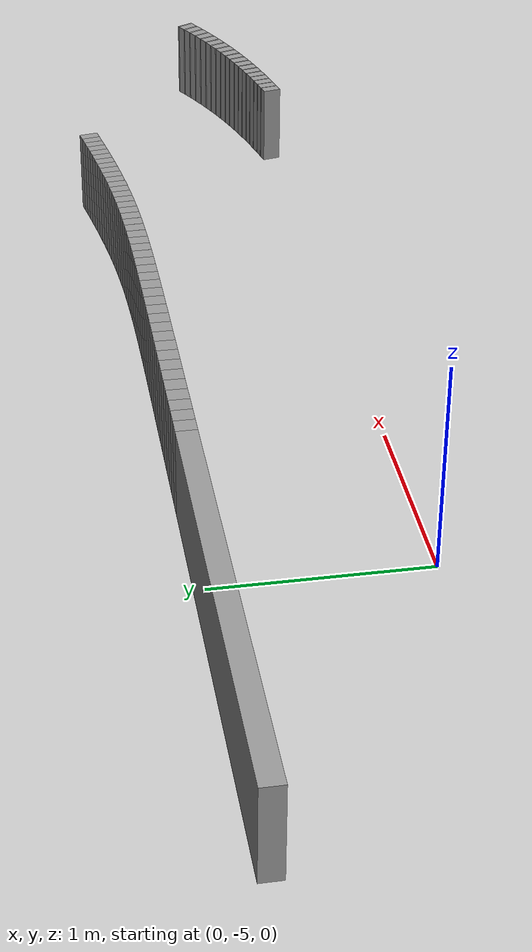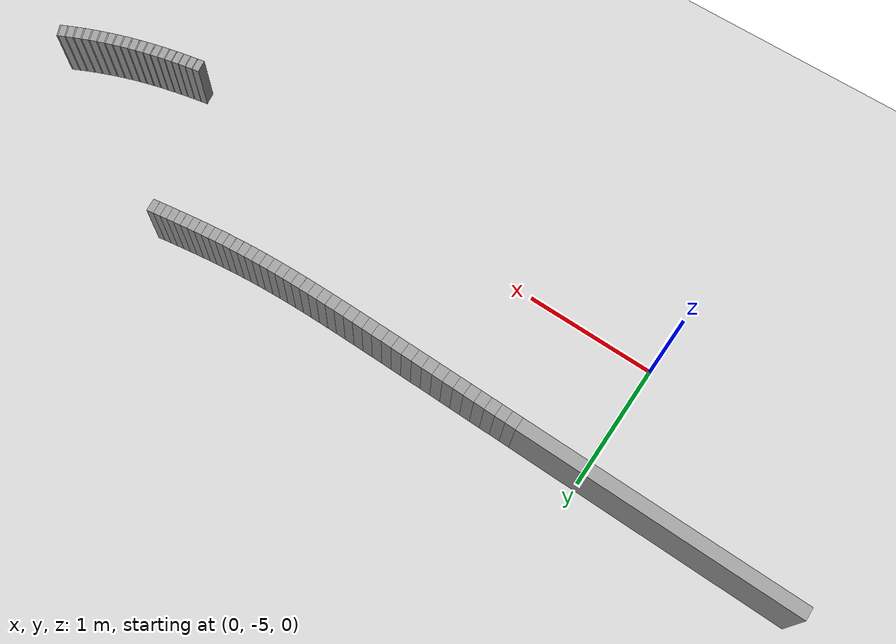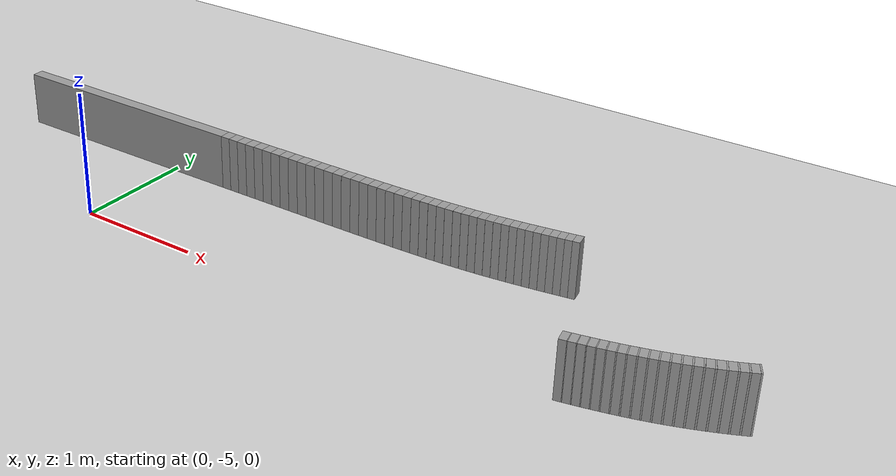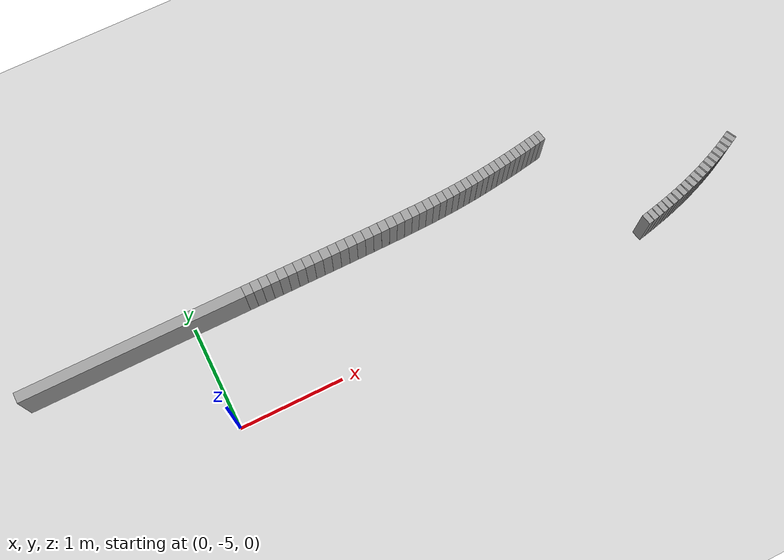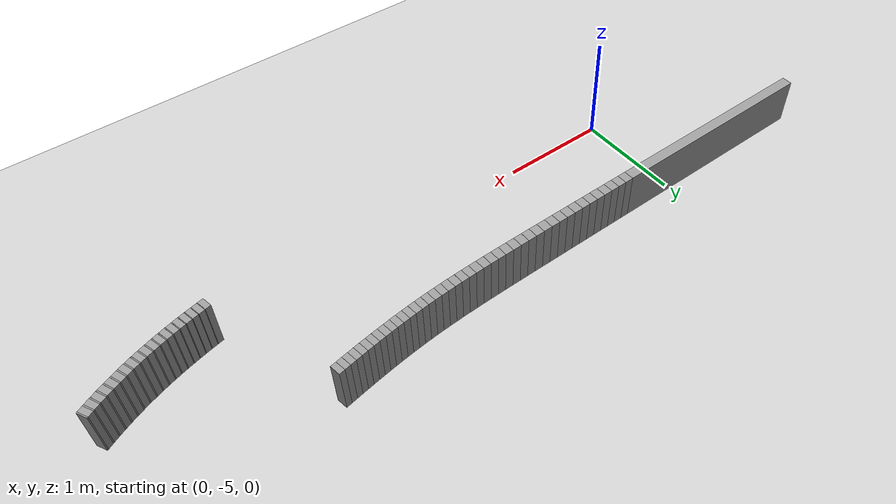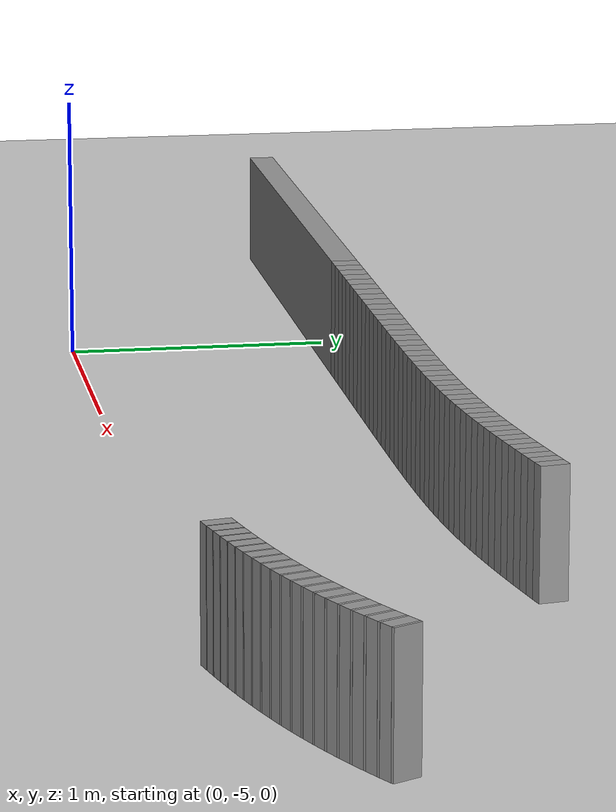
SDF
<sdf version="1.6">
 <world name="default">
  <include><uri>model://ground_plane</uri></include>
  <include><uri>model://sun</uri></include>
  <model name="wall_524_outward">
   <static>true</static>
   <link name="link">
    <collision name="collision">
     <geometry><box><size>2.135280893988103 0.1 0.45</size></box></geometry>
    </collision>
    <visual name="visual">
     <geometry><box><size>2.135280893988103 0.1 0.45</size></box></geometry>
     <material>
      <script><uri>file://media/materials/scripts/gazebo.material</uri><name>Gazebo/Gray</name></script>
     </material>
    </visual>
   </link>
   <pose>-0.5383858296978112 -3.9999999999999996 0.225 0 0 0.0</pose>
  </model>
  <model name="wall_525_outward">
   <static>true</static>
   <link name="link">
    <collision name="collision">
     <geometry><box><size>0.08150125245687756 0.1 0.45</size></box></geometry>
    </collision>
    <visual name="visual">
     <geometry><box><size>0.08150125245687756 0.1 0.45</size></box></geometry>
     <material>
      <script><uri>file://media/materials/scripts/gazebo.material</uri><name>Gazebo/Gray</name></script>
     </material>
    </visual>
   </link>
   <pose>0.5700052435239782 -3.9999997610154123 0.225 0 0 5.864562317900319e-06</pose>
  </model>
  <model name="wall_526_outward">
   <static>true</static>
   <link name="link">
    <collision name="collision">
     <geometry><box><size>0.08223788281824347 0.1 0.45</size></box></geometry>
    </collision>
    <visual name="visual">
     <geometry><box><size>0.08223788281824347 0.1 0.45</size></box></geometry>
     <material>
      <script><uri>file://media/materials/scripts/gazebo.material</uri><name>Gazebo/Gray</name></script>
     </material>
    </visual>
   </link>
   <pose>0.6518748111587042 -3.999999103136308 0.225 0 0 1.0187385749527258e-05</pose>
  </model>
  <model name="wall_527_outward">
   <static>true</static>
   <link name="link">
    <collision name="collision">
     <geometry><box><size>0.08291471958242132 0.1 0.45</size></box></geometry>
    </collision>
    <visual name="visual">
     <geometry><box><size>0.08291471958242132 0.1 0.45</size></box></geometry>
     <material>
      <script><uri>file://media/materials/scripts/gazebo.material</uri><name>Gazebo/Gray</name></script>
     </material>
    </visual>
   </link>
   <pose>0.7344511123506614 -3.999997964862562 0.225 0 0 1.7352268259915284e-05</pose>
  </model>
  <model name="wall_528_outward">
   <static>true</static>
   <link name="link">
    <collision name="collision">
     <geometry><box><size>0.08351901155070049 0.1 0.45</size></box></geometry>
    </collision>
    <visual name="visual">
     <geometry><box><size>0.08351901155070049 0.1 0.45</size></box></geometry>
     <material>
      <script><uri>file://media/materials/scripts/gazebo.material</uri><name>Gazebo/Gray</name></script>
     </material>
    </visual>
   </link>
   <pose>0.8176679778858278 -3.9999957960814703 0.225 0 0 3.4708309793278284e-05</pose>
  </model>
  <model name="wall_529_outward">
   <static>true</static>
   <link name="link">
    <collision name="collision">
     <geometry><box><size>0.0840341624467195 0.1 0.45</size></box></geometry>
    </collision>
    <visual name="visual">
     <geometry><box><size>0.0840341624467195 0.1 0.45</size></box></geometry>
     <material>
      <script><uri>file://media/materials/scripts/gazebo.material</uri><name>Gazebo/Gray</name></script>
     </material>
    </visual>
   </link>
   <pose>0.9014445647900173 -3.9999919323030264 0.225 0 0 5.746178724685052e-05</pose>
  </model>
  <model name="wall_530_outward">
   <static>true</static>
   <link name="link">
    <collision name="collision">
     <geometry><box><size>0.0844354699570295 0.1 0.45</size></box></geometry>
    </collision>
    <visual name="visual">
     <geometry><box><size>0.0844354699570295 0.1 0.45</size></box></geometry>
     <material>
      <script><uri>file://media/materials/scripts/gazebo.material</uri><name>Gazebo/Gray</name></script>
     </material>
    </visual>
   </link>
   <pose>0.9856793807384562 -3.9999855756033504 0.225 0 0 9.338073450091826e-05</pose>
  </model>
  <model name="wall_531_outward">
   <static>true</static>
   <link name="link">
    <collision name="collision">
     <geometry><box><size>0.08471000371996473 0.1 0.45</size></box></geometry>
    </collision>
    <visual name="visual">
     <geometry><box><size>0.08471000371996473 0.1 0.45</size></box></geometry>
     <material>
      <script><uri>file://media/materials/scripts/gazebo.material</uri><name>Gazebo/Gray</name></script>
     </material>
    </visual>
   </link>
   <pose>1.070252116848922 -3.999974845123394 0.225 0 0 0.00016026812872207657</pose>
  </model>
  <model name="wall_532_outward">
   <static>true</static>
   <link name="link">
    <collision name="collision">
     <geometry><box><size>0.08484172103939357 0.1 0.45</size></box></geometry>
    </collision>
    <visual name="visual">
     <geometry><box><size>0.08484172103939357 0.1 0.45</size></box></geometry>
     <material>
      <script><uri>file://media/materials/scripts/gazebo.material</uri><name>Gazebo/Gray</name></script>
     </material>
    </visual>
   </link>
   <pose>1.1550279773252452 -3.999957317633406 0.225 0 0 0.00025316160751365853</pose>
  </model>
  <model name="wall_533_outward">
   <static>true</static>
   <link name="link">
    <collision name="collision">
     <geometry><box><size>0.08480933846382972 0.1 0.45</size></box></geometry>
    </collision>
    <visual name="visual">
     <geometry><box><size>0.08480933846382972 0.1 0.45</size></box></geometry>
     <material>
      <script><uri>file://media/materials/scripts/gazebo.material</uri><name>Gazebo/Gray</name></script>
     </material>
    </visual>
   </link>
   <pose>1.239853502441557 -3.999929910143088 0.225 0 0 0.00039307363841597495</pose>
  </model>
  <model name="wall_534_outward">
   <static>true</static>
   <link name="link">
    <collision name="collision">
     <geometry><box><size>0.08461123308209384 0.1 0.45</size></box></geometry>
    </collision>
    <visual name="visual">
     <geometry><box><size>0.08461123308209384 0.1 0.45</size></box></geometry>
     <material>
      <script><uri>file://media/materials/scripts/gazebo.material</uri><name>Gazebo/Gray</name></script>
     </material>
    </visual>
   </link>
   <pose>1.3245637771807472 -3.9998876216337047 0.225 0 0 0.0006056017109029111</pose>
  </model>
  <model name="wall_535_outward">
   <static>true</static>
   <link name="link">
    <collision name="collision">
     <geometry><box><size>0.08424541634006685 0.1 0.45</size></box></geometry>
    </collision>
    <visual name="visual">
     <geometry><box><size>0.08424541634006685 0.1 0.45</size></box></geometry>
     <material>
      <script><uri>file://media/materials/scripts/gazebo.material</uri><name>Gazebo/Gray</name></script>
     </material>
    </visual>
   </link>
   <pose>1.408992076684991 -3.999823660760058 0.225 0 0 0.0009102103927858631</pose>
  </model>
  <model name="wall_536_outward">
   <static>true</static>
   <link name="link">
    <collision name="collision">
     <geometry><box><size>0.08371408470620355 0.1 0.45</size></box></geometry>
    </collision>
    <visual name="visual">
     <geometry><box><size>0.08371408470620355 0.1 0.45</size></box></geometry>
     <material>
      <script><uri>file://media/materials/scripts/gazebo.material</uri><name>Gazebo/Gray</name></script>
     </material>
    </visual>
   </link>
   <pose>1.4929717718832411 -3.9997290108612824 0.225 0 0 0.0013452788620482237</pose>
  </model>
  <model name="wall_537_outward">
   <static>true</static>
   <link name="link">
    <collision name="collision">
     <geometry><box><size>0.08302720430401492 0.1 0.45</size></box></geometry>
    </collision>
    <visual name="visual">
     <geometry><box><size>0.08302720430401492 0.1 0.45</size></box></geometry>
     <material>
      <script><uri>file://media/materials/scripts/gazebo.material</uri><name>Gazebo/Gray</name></script>
     </material>
    </visual>
   </link>
   <pose>1.5763422991640175 -3.9995915345500777 0.225 0 0 0.0019551901398577117</pose>
  </model>
  <model name="wall_538_outward">
   <static>true</static>
   <link name="link">
    <collision name="collision">
     <geometry><box><size>0.0821989579577603 0.1 0.45</size></box></geometry>
    </collision>
    <visual name="visual">
     <geometry><box><size>0.0821989579577603 0.1 0.45</size></box></geometry>
     <material>
      <script><uri>file://media/materials/scripts/gazebo.material</uri><name>Gazebo/Gray</name></script>
     </material>
    </visual>
   </link>
   <pose>1.6589551405183678 -3.9993955329595505 0.225 0 0 0.0027940696308614964</pose>
  </model>
  <model name="wall_539_outward">
   <static>true</static>
   <link name="link">
    <collision name="collision">
     <geometry><box><size>0.08124113622272153 0.1 0.45</size></box></geometry>
    </collision>
    <visual name="visual">
     <geometry><box><size>0.08124113622272153 0.1 0.45</size></box></geometry>
     <material>
      <script><uri>file://media/materials/scripts/gazebo.material</uri><name>Gazebo/Gray</name></script>
     </material>
    </visual>
   </link>
   <pose>1.7406747141737315 -3.9991212338027253 0.225 0 0 0.003925718353737404</pose>
  </model>
  <model name="wall_540_outward">
   <static>true</static>
   <link name="link">
    <collision name="collision">
     <geometry><box><size>0.0801764884708516 0.1 0.45</size></box></geometry>
    </collision>
    <visual name="visual">
     <geometry><box><size>0.0801764884708516 0.1 0.45</size></box></geometry>
     <material>
      <script><uri>file://media/materials/scripts/gazebo.material</uri><name>Gazebo/Gray</name></script>
     </material>
    </visual>
   </link>
   <pose>1.8213826216257072 -3.9987439272606995 0.225 0 0 0.005434089672028095</pose>
  </model>
  <model name="wall_541_outward">
   <static>true</static>
   <link name="link">
    <collision name="collision">
     <geometry><box><size>0.07902057258780572 0.1 0.45</size></box></geometry>
    </collision>
    <visual name="visual">
     <geometry><box><size>0.07902057258780572 0.1 0.45</size></box></geometry>
     <material>
      <script><uri>file://media/materials/scripts/gazebo.material</uri><name>Gazebo/Gray</name></script>
     </material>
    </visual>
   </link>
   <pose>1.9009794834559144 -3.998234384914111 0.225 0 0 0.007382962315133266</pose>
  </model>
  <model name="wall_542_outward">
   <static>true</static>
   <link name="link">
    <collision name="collision">
     <geometry><box><size>0.0777852298877978 0.1 0.45</size></box></geometry>
    </collision>
    <visual name="visual">
     <geometry><box><size>0.0777852298877978 0.1 0.45</size></box></geometry>
     <material>
      <script><uri>file://media/materials/scripts/gazebo.material</uri><name>Gazebo/Gray</name></script>
     </material>
    </visual>
   </link>
   <pose>1.9793794143438128 -3.99755890632965 0.225 0 0 0.00986779903185152</pose>
  </model>
  <model name="wall_543_outward">
   <static>true</static>
   <link name="link">
    <collision name="collision">
     <geometry><box><size>0.07648880235677072 0.1 0.45</size></box></geometry>
    </collision>
    <visual name="visual">
     <geometry><box><size>0.07648880235677072 0.1 0.45</size></box></geometry>
     <material>
      <script><uri>file://media/materials/scripts/gazebo.material</uri><name>Gazebo/Gray</name></script>
     </material>
    </visual>
   </link>
   <pose>2.0565113241700406 -3.996679416813003 0.225 0 0 0.012962031121447991</pose>
  </model>
  <model name="wall_544_outward">
   <static>true</static>
   <link name="link">
    <collision name="collision">
     <geometry><box><size>0.07513872669912303 0.1 0.45</size></box></geometry>
    </collision>
    <visual name="visual">
     <geometry><box><size>0.07513872669912303 0.1 0.45</size></box></geometry>
     <material>
      <script><uri>file://media/materials/scripts/gazebo.material</uri><name>Gazebo/Gray</name></script>
     </material>
    </visual>
   </link>
   <pose>2.132316609798602 -3.9955546877031476 0.225 0 0 0.016743623222454016</pose>
  </model>
  <model name="wall_545_outward">
   <static>true</static>
   <link name="link">
    <collision name="collision">
     <geometry><box><size>0.07375114198683631 0.1 0.45</size></box></geometry>
    </collision>
    <visual name="visual">
     <geometry><box><size>0.07375114198683631 0.1 0.45</size></box></geometry>
     <material>
      <script><uri>file://media/materials/scripts/gazebo.material</uri><name>Gazebo/Gray</name></script>
     </material>
    </visual>
   </link>
   <pose>2.2067479292818053 -3.994141031214636 0.225 0 0 0.021279611799836288</pose>
  </model>
  <model name="wall_546_outward">
   <static>true</static>
   <link name="link">
    <collision name="collision">
     <geometry><box><size>0.07234069306295564 0.1 0.45</size></box></geometry>
    </collision>
    <visual name="visual">
     <geometry><box><size>0.07234069306295564 0.1 0.45</size></box></geometry>
     <material>
      <script><uri>file://media/materials/scripts/gazebo.material</uri><name>Gazebo/Gray</name></script>
     </material>
    </visual>
   </link>
   <pose>2.2797727000691568 -3.99239428353959 0.225 0 0 0.026602525022746362</pose>
  </model>
  <model name="wall_547_outward">
   <static>true</static>
   <link name="link">
    <collision name="collision">
     <geometry><box><size>0.07091756063111097 0.1 0.45</size></box></geometry>
    </collision>
    <visual name="visual">
     <geometry><box><size>0.07091756063111097 0.1 0.45</size></box></geometry>
     <material>
      <script><uri>file://media/materials/scripts/gazebo.material</uri><name>Gazebo/Gray</name></script>
     </material>
    </visual>
   </link>
   <pose>2.3513700371991915 -3.990271793446258 0.225 0 0 0.03273063073100637</pose>
  </model>
  <model name="wall_548_outward">
   <static>true</static>
   <link name="link">
    <collision name="collision">
     <geometry><box><size>0.06950230597319199 0.1 0.45</size></box></geometry>
    </collision>
    <visual name="visual">
     <geometry><box><size>0.06950230597319199 0.1 0.45</size></box></geometry>
     <material>
      <script><uri>file://media/materials/scripts/gazebo.material</uri><name>Gazebo/Gray</name></script>
     </material>
    </visual>
   </link>
   <pose>2.421533660897125 -3.9877337654063645 0.225 0 0 0.03965359393623297</pose>
  </model>
  <model name="wall_549_outward">
   <static>true</static>
   <link name="link">
    <collision name="collision">
     <geometry><box><size>0.06811551323763652 0.1 0.45</size></box></geometry>
    </collision>
    <visual name="visual">
     <geometry><box><size>0.06811551323763652 0.1 0.45</size></box></geometry>
     <material>
      <script><uri>file://media/materials/scripts/gazebo.material</uri><name>Gazebo/Gray</name></script>
     </material>
    </visual>
   </link>
   <pose>2.4902771437233793 -3.9847454188350024 0.225 0 0 0.047310826007228</pose>
  </model>
  <model name="wall_550_outward">
   <static>true</static>
   <link name="link">
    <collision name="collision">
     <geometry><box><size>0.06677590562498632 0.1 0.45</size></box></geometry>
    </collision>
    <visual name="visual">
     <geometry><box><size>0.06677590562498632 0.1 0.45</size></box></geometry>
     <material>
      <script><uri>file://media/materials/scripts/gazebo.material</uri><name>Gazebo/Gray</name></script>
     </material>
    </visual>
   </link>
   <pose>2.557633117786536 -3.9812787179929474 0.225 0 0 0.05561762052714323</pose>
  </model>
  <model name="wall_551_outward">
   <static>true</static>
   <link name="link">
    <collision name="collision">
     <geometry><box><size>0.06550549616669425 0.1 0.45</size></box></geometry>
    </collision>
    <visual name="visual">
     <geometry><box><size>0.06550549616669425 0.1 0.45</size></box></geometry>
     <material>
      <script><uri>file://media/materials/scripts/gazebo.material</uri><name>Gazebo/Gray</name></script>
     </material>
    </visual>
   </link>
   <pose>2.623654195094754 -3.977313318790109 0.225 0 0 0.0644482987703246</pose>
  </model>
  <model name="wall_552_outward">
   <static>true</static>
   <link name="link">
    <collision name="collision">
     <geometry><box><size>0.06432050365240971 0.1 0.45</size></box></geometry>
    </collision>
    <visual name="visual">
     <geometry><box><size>0.06432050365240971 0.1 0.45</size></box></geometry>
     <material>
      <script><uri>file://media/materials/scripts/gazebo.material</uri><name>Gazebo/Gray</name></script>
     </material>
    </visual>
   </link>
   <pose>2.6884120004692713 -3.972837281877457 0.225 0 0 0.07365552497468117</pose>
  </model>
  <model name="wall_553_outward">
   <static>true</static>
   <link name="link">
    <collision name="collision">
     <geometry><box><size>0.06324392132199713 0.1 0.45</size></box></geometry>
    </collision>
    <visual name="visual">
     <geometry><box><size>0.06324392132199713 0.1 0.45</size></box></geometry>
     <material>
      <script><uri>file://media/materials/scripts/gazebo.material</uri><name>Gazebo/Gray</name></script>
     </material>
    </visual>
   </link>
   <pose>2.751997987091258 -3.967847000818419 0.225 0 0 0.0830644750760236</pose>
  </model>
  <model name="wall_554_outward">
   <static>true</static>
   <link name="link">
    <collision name="collision">
     <geometry><box><size>0.06228239149633138 0.1 0.45</size></box></geometry>
    </collision>
    <visual name="visual">
     <geometry><box><size>0.06228239149633138 0.1 0.45</size></box></geometry>
     <material>
      <script><uri>file://media/materials/scripts/gazebo.material</uri><name>Gazebo/Gray</name></script>
     </material>
    </visual>
   </link>
   <pose>2.814519067935578 -3.962347807891387 0.225 0 0 0.09247085569414767</pose>
  </model>
  <model name="wall_555_outward">
   <static>true</static>
   <link name="link">
    <collision name="collision">
     <geometry><box><size>0.061437507013348006 0.1 0.45</size></box></geometry>
    </collision>
    <visual name="visual">
     <geometry><box><size>0.061437507013348006 0.1 0.45</size></box></geometry>
     <material>
      <script><uri>file://media/materials/scripts/gazebo.material</uri><name>Gazebo/Gray</name></script>
     </material>
    </visual>
   </link>
   <pose>2.876087257859952 -3.956353652932331 0.225 0 0 0.10169638266942829</pose>
  </model>
  <model name="wall_556_outward">
   <static>true</static>
   <link name="link">
    <collision name="collision">
     <geometry><box><size>0.0607007172198706 0.1 0.45</size></box></geometry>
    </collision>
    <visual name="visual">
     <geometry><box><size>0.0607007172198706 0.1 0.45</size></box></geometry>
     <material>
      <script><uri>file://media/materials/scripts/gazebo.material</uri><name>Gazebo/Gray</name></script>
     </material>
    </visual>
   </link>
   <pose>2.936812343873633 -3.9498862660126153 0.225 0 0 0.11056262101498295</pose>
  </model>
  <model name="wall_557_outward">
   <static>true</static>
   <link name="link">
    <collision name="collision">
     <geometry><box><size>0.060060141098872685 0.1 0.45</size></box></geometry>
    </collision>
    <visual name="visual">
     <geometry><box><size>0.060060141098872685 0.1 0.45</size></box></geometry>
     <material>
      <script><uri>file://media/materials/scripts/gazebo.material</uri><name>Gazebo/Gray</name></script>
     </material>
    </visual>
   </link>
   <pose>2.9967953329893806 -3.9429744328633958 0.225 0 0 0.11892957933676929</pose>
  </model>
  <model name="wall_558_outward">
   <static>true</static>
   <link name="link">
    <collision name="collision">
     <geometry><box><size>0.059488633252135256 0.1 0.45</size></box></geometry>
    </collision>
    <visual name="visual">
     <geometry><box><size>0.059488633252135256 0.1 0.45</size></box></geometry>
     <material>
      <script><uri>file://media/materials/scripts/gazebo.material</uri><name>Gazebo/Gray</name></script>
     </material>
    </visual>
   </link>
   <pose>3.0561192100791708 -3.935653150375314 0.225 0 0 0.12668989968731018</pose>
  </model>
  <model name="wall_559_outward">
   <static>true</static>
   <link name="link">
    <collision name="collision">
     <geometry><box><size>0.05896284009954738 0.1 0.45</size></box></geometry>
    </collision>
    <visual name="visual">
     <geometry><box><size>0.05896284009954738 0.1 0.45</size></box></geometry>
     <material>
      <script><uri>file://media/materials/scripts/gazebo.material</uri><name>Gazebo/Gray</name></script>
     </material>
    </visual>
   </link>
   <pose>3.1148430814980244 -3.927962211351708 0.225 0 0 0.13379493594003947</pose>
  </model>
  <model name="wall_560_outward">
   <static>true</static>
   <link name="link">
    <collision name="collision">
     <geometry><box><size>0.0584540373480096 0.1 0.45</size></box></geometry>
    </collision>
    <visual name="visual">
     <geometry><box><size>0.0584540373480096 0.1 0.45</size></box></geometry>
     <material>
      <script><uri>file://media/materials/scripts/gazebo.material</uri><name>Gazebo/Gray</name></script>
     </material>
    </visual>
   </link>
   <pose>3.173001140253065 -3.9199444004816666 0.225 0 0 0.14023063741099723</pose>
  </model>
  <model name="wall_561_outward">
   <static>true</static>
   <link name="link">
    <collision name="collision">
     <geometry><box><size>0.05793242165843847 0.1 0.45</size></box></geometry>
    </collision>
    <visual name="visual">
     <geometry><box><size>0.05793242165843847 0.1 0.45</size></box></geometry>
     <material>
      <script><uri>file://media/materials/scripts/gazebo.material</uri><name>Gazebo/Gray</name></script>
     </material>
    </visual>
   </link>
   <pose>3.2305990676055805 -3.9116436769765563 0.225 0 0 0.14605447649661218</pose>
  </model>
  <model name="wall_562_outward">
   <static>true</static>
   <link name="link">
    <collision name="collision">
     <geometry><box><size>0.05738423710991108 0.1 0.45</size></box></geometry>
    </collision>
    <visual name="visual">
     <geometry><box><size>0.05738423710991108 0.1 0.45</size></box></geometry>
     <material>
      <script><uri>file://media/materials/scripts/gazebo.material</uri><name>Gazebo/Gray</name></script>
     </material>
    </visual>
   </link>
   <pose>3.287621044696449 -3.9031023734833257 0.225 0 0 0.15133913695114637</pose>
  </model>
  <model name="wall_563_outward">
   <static>true</static>
   <link name="link">
    <collision name="collision">
     <geometry><box><size>0.05678912988196015 0.1 0.45</size></box></geometry>
    </collision>
    <visual name="visual">
     <geometry><box><size>0.05678912988196015 0.1 0.45</size></box></geometry>
     <material>
      <script><uri>file://media/materials/scripts/gazebo.material</uri><name>Gazebo/Gray</name></script>
     </material>
    </visual>
   </link>
   <pose>3.344034116523858 -3.8943596305139616 0.225 0 0 0.156194345622799</pose>
  </model>
  <model name="wall_564_outward">
   <static>true</static>
   <link name="link">
    <collision name="collision">
     <geometry><box><size>0.056138813868408015 0.1 0.45</size></box></geometry>
    </collision>
    <visual name="visual">
     <geometry><box><size>0.056138813868408015 0.1 0.45</size></box></geometry>
     <material>
      <script><uri>file://media/materials/scripts/gazebo.material</uri><name>Gazebo/Gray</name></script>
     </material>
    </visual>
   </link>
   <pose>3.399790536339025 -3.8854497921212086 0.225 0 0 0.16075108039010894</pose>
  </model>
  <model name="wall_565_outward">
   <static>true</static>
   <link name="link">
    <collision name="collision">
     <geometry><box><size>0.055431518164482864 0.1 0.45</size></box></geometry>
    </collision>
    <visual name="visual">
     <geometry><box><size>0.055431518164482864 0.1 0.45</size></box></geometry>
     <material>
      <script><uri>file://media/materials/scripts/gazebo.material</uri><name>Gazebo/Gray</name></script>
     </material>
    </visual>
   </link>
   <pose>3.4548367089087746 -3.876400560899718 0.225 0 0 0.1651490096906937</pose>
  </model>
  <model name="wall_566_outward">
   <static>true</static>
   <link name="link">
    <collision name="collision">
     <geometry><box><size>0.05467319921214187 0.1 0.45</size></box></geometry>
    </collision>
    <visual name="visual">
     <geometry><box><size>0.05467319921214187 0.1 0.45</size></box></geometry>
     <material>
      <script><uri>file://media/materials/scripts/gazebo.material</uri><name>Gazebo/Gray</name></script>
     </material>
    </visual>
   </link>
   <pose>3.509120098510282 -3.867232065442633 0.225 0 0 0.16952395106248</pose>
  </model>
  <model name="wall_567_outward">
   <static>true</static>
   <link name="link">
    <collision name="collision">
     <geometry><box><size>0.05386591017921991 0.1 0.45</size></box></geometry>
    </collision>
    <visual name="visual">
     <geometry><box><size>0.05386591017921991 0.1 0.45</size></box></geometry>
     <material>
      <script><uri>file://media/materials/scripts/gazebo.material</uri><name>Gazebo/Gray</name></script>
     </material>
    </visual>
   </link>
   <pose>3.5625910835777743 -3.857957177747701 0.225 0 0 0.17400457405791184</pose>
  </model>
  <model name="wall_799_inward">
   <static>true</static>
   <link name="link">
    <collision name="collision">
     <geometry><box><size>0.05382430471241657 0.1 0.45</size></box></geometry>
    </collision>
    <visual name="visual">
     <geometry><box><size>0.05382430471241657 0.1 0.45</size></box></geometry>
     <material>
      <script><uri>file://media/materials/scripts/gazebo.material</uri><name>Gazebo/Gray</name></script>
     </material>
    </visual>
   </link>
   <pose>4.057927975213497 -4.985392928813631 0.225 0 0 0.20251378199396378</pose>
  </model>
  <model name="wall_800_inward">
   <static>true</static>
   <link name="link">
    <collision name="collision">
     <geometry><box><size>0.0046709267749053636 0.1 0.45</size></box></geometry>
    </collision>
    <visual name="visual">
     <geometry><box><size>0.0046709267749053636 0.1 0.45</size></box></geometry>
     <material>
      <script><uri>file://media/materials/scripts/gazebo.material</uri><name>Gazebo/Gray</name></script>
     </material>
    </visual>
   </link>
   <pose>4.08657604298657 -4.979501385104751 0.225 0 0 0.20640623080224216</pose>
  </model>
  <model name="wall_801_inward">
   <static>true</static>
   <link name="link">
    <collision name="collision">
     <geometry><box><size>0.053461850901035744 0.1 0.45</size></box></geometry>
    </collision>
    <visual name="visual">
     <geometry><box><size>0.053461850901035744 0.1 0.45</size></box></geometry>
     <material>
      <script><uri>file://media/materials/scripts/gazebo.material</uri><name>Gazebo/Gray</name></script>
     </material>
    </visual>
   </link>
   <pose>4.115003939217534 -4.973442612119258 0.225 0 0 0.21029867961050852</pose>
  </model>
  <model name="wall_802_inward">
   <static>true</static>
   <link name="link">
    <collision name="collision">
     <geometry><box><size>0.005249068785918014 0.1 0.45</size></box></geometry>
    </collision>
    <visual name="visual">
     <geometry><box><size>0.005249068785918014 0.1 0.45</size></box></geometry>
     <material>
      <script><uri>file://media/materials/scripts/gazebo.material</uri><name>Gazebo/Gray</name></script>
     </material>
    </visual>
   </link>
   <pose>4.143710236337375 -4.967303378785598 0.225 0 0 0.21467291754830897</pose>
  </model>
  <model name="wall_803_inward">
   <static>true</static>
   <link name="link">
    <collision name="collision">
     <geometry><box><size>0.053182303994509725 0.1 0.45</size></box></geometry>
    </collision>
    <visual name="visual">
     <geometry><box><size>0.053182303994509725 0.1 0.45</size></box></geometry>
     <material>
      <script><uri>file://media/materials/scripts/gazebo.material</uri><name>Gazebo/Gray</name></script>
     </material>
    </visual>
   </link>
   <pose>4.172230282456351 -4.960966031921354 0.225 0 0 0.21904715548584108</pose>
  </model>
  <model name="wall_804_inward">
   <static>true</static>
   <link name="link">
    <collision name="collision">
     <geometry><box><size>0.005888284277211887 0.1 0.45</size></box></geometry>
    </collision>
    <visual name="visual">
     <geometry><box><size>0.005888284277211887 0.1 0.45</size></box></geometry>
     <material>
      <script><uri>file://media/materials/scripts/gazebo.material</uri><name>Gazebo/Gray</name></script>
     </material>
    </visual>
   </link>
   <pose>4.201056655276711 -4.954533929255529 0.225 0 0 0.22395407874156734</pose>
  </model>
  <model name="wall_805_inward">
   <static>true</static>
   <link name="link">
    <collision name="collision">
     <geometry><box><size>0.05298571335124649 0.1 0.45</size></box></geometry>
    </collision>
    <visual name="visual">
     <geometry><box><size>0.05298571335124649 0.1 0.45</size></box></geometry>
     <material>
      <script><uri>file://media/materials/scripts/gazebo.material</uri><name>Gazebo/Gray</name></script>
     </material>
    </visual>
   </link>
   <pose>4.2297293399460525 -4.947869683236678 0.225 0 0 0.22886100199727624</pose>
  </model>
  <model name="wall_806_inward">
   <static>true</static>
   <link name="link">
    <collision name="collision">
     <geometry><box><size>0.0065620187221228235 0.1 0.45</size></box></geometry>
    </collision>
    <visual name="visual">
     <geometry><box><size>0.0065620187221228235 0.1 0.45</size></box></geometry>
     <material>
      <script><uri>file://media/materials/scripts/gazebo.material</uri><name>Gazebo/Gray</name></script>
     </material>
    </visual>
   </link>
   <pose>4.258722747026061 -4.941097471973725 0.225 0 0 0.2343293781858728</pose>
  </model>
  <model name="wall_807_inward">
   <static>true</static>
   <link name="link">
    <collision name="collision">
     <geometry><box><size>0.05287271130112119 0.1 0.45</size></box></geometry>
    </collision>
    <visual name="visual">
     <geometry><box><size>0.05287271130112119 0.1 0.45</size></box></geometry>
     <material>
      <script><uri>file://media/materials/scripts/gazebo.material</uri><name>Gazebo/Gray</name></script>
     </material>
    </visual>
   </link>
   <pose>4.28759399383907 -4.934056854318546 0.225 0 0 0.23979775437460135</pose>
  </model>
  <model name="wall_808_inward">
   <static>true</static>
   <link name="link">
    <collision name="collision">
     <geometry><box><size>0.007261152059474743 0.1 0.45</size></box></geometry>
    </collision>
    <visual name="visual">
     <geometry><box><size>0.007261152059474743 0.1 0.45</size></box></geometry>
     <material>
      <script><uri>file://media/materials/scripts/gazebo.material</uri><name>Gazebo/Gray</name></script>
     </material>
    </visual>
   </link>
   <pose>4.316795309006027 -4.92689444837069 0.225 0 0 0.24584875134993392</pose>
  </model>
  <model name="wall_809_inward">
   <static>true</static>
   <link name="link">
    <collision name="collision">
     <geometry><box><size>0.05283749494985995 0.1 0.45</size></box></geometry>
    </collision>
    <visual name="visual">
     <geometry><box><size>0.05283749494985995 0.1 0.45</size></box></geometry>
     <material>
      <script><uri>file://media/materials/scripts/gazebo.material</uri><name>Gazebo/Gray</name></script>
     </material>
    </visual>
   </link>
   <pose>4.34590170708897 -4.919426120456071 0.225 0 0 0.2518997483251313</pose>
  </model>
  <model name="wall_810_inward">
   <static>true</static>
   <link name="link">
    <collision name="collision">
     <geometry><box><size>0.007935226483805423 0.1 0.45</size></box></geometry>
    </collision>
    <visual name="visual">
     <geometry><box><size>0.007935226483805423 0.1 0.45</size></box></geometry>
     <material>
      <script><uri>file://media/materials/scripts/gazebo.material</uri><name>Gazebo/Gray</name></script>
     </material>
    </visual>
   </link>
   <pose>4.375322471240468 -4.911827109283543 0.225 0 0 0.2585124852554604</pose>
  </model>
  <model name="wall_811_inward">
   <static>true</static>
   <link name="link">
    <collision name="collision">
     <geometry><box><size>0.05287296738975487 0.1 0.45</size></box></geometry>
    </collision>
    <visual name="visual">
     <geometry><box><size>0.05287296738975487 0.1 0.45</size></box></geometry>
     <material>
      <script><uri>file://media/materials/scripts/gazebo.material</uri><name>Gazebo/Gray</name></script>
     </material>
    </visual>
   </link>
   <pose>4.4046710308615 -4.903885662810794 0.225 0 0 0.2651252221858213</pose>
  </model>
  <model name="wall_812_inward">
   <static>true</static>
   <link name="link">
    <collision name="collision">
     <geometry><box><size>0.008588010896634754 0.1 0.45</size></box></geometry>
    </collision>
    <visual name="visual">
     <geometry><box><size>0.008588010896634754 0.1 0.45</size></box></geometry>
     <material>
      <script><uri>file://media/materials/scripts/gazebo.material</uri><name>Gazebo/Gray</name></script>
     </material>
    </visual>
   </link>
   <pose>4.43431962886553 -4.895803720895979 0.225 0 0 0.2722819590261898</pose>
  </model>
  <model name="wall_813_inward">
   <static>true</static>
   <link name="link">
    <collision name="collision">
     <geometry><box><size>0.05296615536989924 0.1 0.45</size></box></geometry>
    </collision>
    <visual name="visual">
     <geometry><box><size>0.05296615536989924 0.1 0.45</size></box></geometry>
     <material>
      <script><uri>file://media/materials/scripts/gazebo.material</uri><name>Gazebo/Gray</name></script>
     </material>
    </visual>
   </link>
   <pose>4.463911251805653 -4.887344473089404 0.225 0 0 0.2794386958665867</pose>
  </model>
  <model name="wall_814_inward">
   <static>true</static>
   <link name="link">
    <collision name="collision">
     <geometry><box><size>0.009182611237348365 0.1 0.45</size></box></geometry>
    </collision>
    <visual name="visual">
     <geometry><box><size>0.009182611237348365 0.1 0.45</size></box></geometry>
     <material>
      <script><uri>file://media/materials/scripts/gazebo.material</uri><name>Gazebo/Gray</name></script>
     </material>
    </visual>
   </link>
   <pose>4.493770452819201 -4.878739922402827 0.225 0 0 0.2870909465794931</pose>
  </model>
  <model name="wall_815_inward">
   <static>true</static>
   <link name="link">
    <collision name="collision">
     <geometry><box><size>0.05310208159569464 0.1 0.45</size></box></geometry>
    </collision>
    <visual name="visual">
     <geometry><box><size>0.05310208159569464 0.1 0.45</size></box></geometry>
     <material>
      <script><uri>file://media/materials/scripts/gazebo.material</uri><name>Gazebo/Gray</name></script>
     </material>
    </visual>
   </link>
   <pose>4.523579918219587 -4.869726910998047 0.225 0 0 0.29474319729252724</pose>
  </model>
  <model name="wall_816_inward">
   <static>true</static>
   <link name="link">
    <collision name="collision">
     <geometry><box><size>0.009693344194348565 0.1 0.45</size></box></geometry>
    </collision>
    <visual name="visual">
     <geometry><box><size>0.009693344194348565 0.1 0.45</size></box></geometry>
     <material>
      <script><uri>file://media/materials/scripts/gazebo.material</uri><name>Gazebo/Gray</name></script>
     </material>
    </visual>
   </link>
   <pose>4.553612136166807 -4.8605686435119875 0.225 0 0 0.3028210719705505</pose>
  </model>
  <model name="wall_817_inward">
   <static>true</static>
   <link name="link">
    <collision name="collision">
     <geometry><box><size>0.05326162946615551 0.1 0.45</size></box></geometry>
    </collision>
    <visual name="visual">
     <geometry><box><size>0.05326162946615551 0.1 0.45</size></box></geometry>
     <material>
      <script><uri>file://media/materials/scripts/gazebo.material</uri><name>Gazebo/Gray</name></script>
     </material>
    </visual>
   </link>
   <pose>4.583592385471665 -4.850976542247101 0.225 0 0 0.3108989466485216</pose>
  </model>
  <model name="wall_818_inward">
   <static>true</static>
   <link name="link">
    <collision name="collision">
     <geometry><box><size>0.010118946761885147 0.1 0.45</size></box></geometry>
    </collision>
    <visual name="visual">
     <geometry><box><size>0.010118946761885147 0.1 0.45</size></box></geometry>
     <material>
      <script><uri>file://media/materials/scripts/gazebo.material</uri><name>Gazebo/Gray</name></script>
     </material>
    </visual>
   </link>
   <pose>4.6137501852809315 -4.84124145670413 0.225 0 0 0.31933150222013734</pose>
  </model>
  <model name="wall_819_inward">
   <static>true</static>
   <link name="link">
    <collision name="collision">
     <geometry><box><size>0.053422327821400634 0.1 0.45</size></box></geometry>
    </collision>
    <visual name="visual">
     <geometry><box><size>0.053422327821400634 0.1 0.45</size></box></geometry>
     <material>
      <script><uri>file://media/materials/scripts/gazebo.material</uri><name>Gazebo/Gray</name></script>
     </material>
    </visual>
   </link>
   <pose>4.643843061746564 -4.831054083630097 0.225 0 0 0.3277640577916541</pose>
  </model>
  <model name="wall_820_inward">
   <static>true</static>
   <link name="link">
    <collision name="collision">
     <geometry><box><size>0.010456641855842082 0.1 0.45</size></box></geometry>
    </collision>
    <visual name="visual">
     <geometry><box><size>0.010456641855842082 0.1 0.45</size></box></geometry>
     <material>
      <script><uri>file://media/materials/scripts/gazebo.material</uri><name>Gazebo/Gray</name></script>
     </material>
    </visual>
   </link>
   <pose>4.6740673781951285 -4.820728833870702 0.225 0 0 0.3364780362847382</pose>
  </model>
  <model name="wall_821_inward">
   <static>true</static>
   <link name="link">
    <collision name="collision">
     <geometry><box><size>0.05356171404318566 0.1 0.45</size></box></geometry>
    </collision>
    <visual name="visual">
     <geometry><box><size>0.05356171404318566 0.1 0.45</size></box></geometry>
     <material>
      <script><uri>file://media/materials/scripts/gazebo.material</uri><name>Gazebo/Gray</name></script>
     </material>
    </visual>
   </link>
   <pose>4.704203579939157 -4.809940590946162 0.225 0 0 0.3451920147779533</pose>
  </model>
  <model name="wall_822_inward">
   <static>true</static>
   <link name="link">
    <collision name="collision">
     <geometry><box><size>0.010696211393549149 0.1 0.45</size></box></geometry>
    </collision>
    <visual name="visual">
     <geometry><box><size>0.010696211393549149 0.1 0.45</size></box></geometry>
     <material>
      <script><uri>file://media/materials/scripts/gazebo.material</uri><name>Gazebo/Gray</name></script>
     </material>
    </visual>
   </link>
   <pose>4.734420940590596 -4.799024090548773 0.225 0 0 0.35410564230753727</pose>
  </model>
  <model name="wall_823_inward">
   <static>true</static>
   <link name="link">
    <collision name="collision">
     <geometry><box><size>0.05365532893473624 0.1 0.45</size></box></geometry>
    </collision>
    <visual name="visual">
     <geometry><box><size>0.05365532893473624 0.1 0.45</size></box></geometry>
     <material>
      <script><uri>file://media/materials/scripts/gazebo.material</uri><name>Gazebo/Gray</name></script>
     </material>
    </visual>
   </link>
   <pose>4.7645165110446905 -4.7876431668113915 0.225 0 0 0.3630192698370211</pose>
  </model>
  <model name="wall_824_inward">
   <static>true</static>
   <link name="link">
    <collision name="collision">
     <geometry><box><size>0.010863963765788728 0.1 0.45</size></box></geometry>
    </collision>
    <visual name="visual">
     <geometry><box><size>0.010863963765788728 0.1 0.45</size></box></geometry>
     <material>
      <script><uri>file://media/materials/scripts/gazebo.material</uri><name>Gazebo/Gray</name></script>
     </material>
    </visual>
   </link>
   <pose>4.794656091410442 -4.776141926285947 0.225 0 0 0.3720726966512819</pose>
  </model>
  <model name="wall_825_inward">
   <static>true</static>
   <link name="link">
    <collision name="collision">
     <geometry><box><size>0.05368054835897322 0.1 0.45</size></box></geometry>
    </collision>
    <visual name="visual">
     <geometry><box><size>0.05368054835897322 0.1 0.45</size></box></geometry>
     <material>
      <script><uri>file://media/materials/scripts/gazebo.material</uri><name>Gazebo/Gray</name></script>
     </material>
    </visual>
   </link>
   <pose>4.8246307808055064 -4.764183475006 0.225 0 0 0.38112612346563446</pose>
  </model>
  <model name="wall_826_inward">
   <static>true</static>
   <link name="link">
    <collision name="collision">
     <geometry><box><size>0.01095872556328561 0.1 0.45</size></box></geometry>
    </collision>
    <visual name="visual">
     <geometry><box><size>0.01095872556328561 0.1 0.45</size></box></geometry>
     <material>
      <script><uri>file://media/materials/scripts/gazebo.material</uri><name>Gazebo/Gray</name></script>
     </material>
    </visual>
   </link>
   <pose>4.854612540759753 -4.752115304560982 0.225 0 0 0.39025852170928566</pose>
  </model>
  <model name="wall_827_inward">
   <static>true</static>
   <link name="link">
    <collision name="collision">
     <geometry><box><size>0.053616239733713454 0.1 0.45</size></box></geometry>
    </collision>
    <visual name="visual">
     <geometry><box><size>0.053616239733713454 0.1 0.45</size></box></geometry>
     <material>
      <script><uri>file://media/materials/scripts/gazebo.material</uri><name>Gazebo/Gray</name></script>
     </material>
    </visual>
   </link>
   <pose>4.884378181806905 -4.739606271901821 0.225 0 0 0.39939091995284787</pose>
  </model>
  <model name="wall_828_inward">
   <static>true</static>
   <link name="link">
    <collision name="collision">
     <geometry><box><size>0.010998636245306401 0.1 0.45</size></box></geometry>
    </collision>
    <visual name="visual">
     <geometry><box><size>0.010998636245306401 0.1 0.45</size></box></geometry>
     <material>
      <script><uri>file://media/materials/scripts/gazebo.material</uri><name>Gazebo/Gray</name></script>
     </material>
    </visual>
   </link>
   <pose>4.914123147295486 -4.726996942322916 0.225 0 0 0.4085565784901764</pose>
  </model>
  <model name="wall_829_inward">
   <static>true</static>
   <link name="link">
    <collision name="collision">
     <geometry><box><size>0.05344894666490826 0.1 0.45</size></box></geometry>
    </collision>
    <visual name="visual">
     <geometry><box><size>0.05344894666490826 0.1 0.45</size></box></geometry>
     <material>
      <script><uri>file://media/materials/scripts/gazebo.material</uri><name>Gazebo/Gray</name></script>
     </material>
    </visual>
   </link>
   <pose>4.943596424210683 -4.713970571486547 0.225 0 0 0.4177222370274552</pose>
  </model>
  <model name="wall_830_inward">
   <static>true</static>
   <link name="link">
    <collision name="collision">
     <geometry><box><size>0.010990456716178792 0.1 0.45</size></box></geometry>
    </collision>
    <visual name="visual">
     <geometry><box><size>0.010990456716178792 0.1 0.45</size></box></geometry>
     <material>
      <script><uri>file://media/materials/scripts/gazebo.material</uri><name>Gazebo/Gray</name></script>
     </material>
    </visual>
   </link>
   <pose>4.973025098007584 -4.700853787709532 0.225 0 0 0.4268810790043306</pose>
  </model>
  <model name="wall_831_inward">
   <static>true</static>
   <link name="link">
    <collision name="collision">
     <geometry><box><size>0.053166272149729375 0.1 0.45</size></box></geometry>
    </collision>
    <visual name="visual">
     <geometry><box><size>0.053166272149729375 0.1 0.45</size></box></geometry>
     <material>
      <script><uri>file://media/materials/scripts/gazebo.material</uri><name>Gazebo/Gray</name></script>
     </material>
    </visual>
   </link>
   <pose>5.002122979972642 -4.687351103677766 0.225 0 0 0.4360399209812912</pose>
  </model>
  <model name="wall_832_inward">
   <static>true</static>
   <link name="link">
    <collision name="collision">
     <geometry><box><size>0.010951928342199699 0.1 0.45</size></box></geometry>
    </collision>
    <visual name="visual">
     <geometry><box><size>0.010951928342199699 0.1 0.45</size></box></geometry>
     <material>
      <script><uri>file://media/materials/scripts/gazebo.material</uri><name>Gazebo/Gray</name></script>
     </material>
    </visual>
   </link>
   <pose>5.031161037816722 -4.673765634239167 0.225 0 0 0.445166654637948</pose>
  </model>
  <model name="wall_833_inward">
   <static>true</static>
   <link name="link">
    <collision name="collision">
     <geometry><box><size>0.052768550904488586 0.1 0.45</size></box></geometry>
    </collision>
    <visual name="visual">
     <geometry><box><size>0.052768550904488586 0.1 0.45</size></box></geometry>
     <material>
      <script><uri>file://media/materials/scripts/gazebo.material</uri><name>Gazebo/Gray</name></script>
     </material>
    </visual>
   </link>
   <pose>5.059811462145058 -4.659829493452998 0.225 0 0 0.4542933882945601</pose>
  </model>
  <model name="wall_834_inward">
   <static>true</static>
   <link name="link">
    <collision name="collision">
     <geometry><box><size>0.01086962552298811 0.1 0.45</size></box></geometry>
    </collision>
    <visual name="visual">
     <geometry><box><size>0.01086962552298811 0.1 0.45</size></box></geometry>
     <material>
      <script><uri>file://media/materials/scripts/gazebo.material</uri><name>Gazebo/Gray</name></script>
     </material>
    </visual>
   </link>
   <pose>5.088381379428532 -4.6458222654686345 0.225 0 0 0.46335153343334234</pose>
  </model>
  <model name="wall_835_inward">
   <static>true</static>
   <link name="link">
    <collision name="collision">
     <geometry><box><size>0.05226088715174838 0.1 0.45</size></box></geometry>
    </collision>
    <visual name="visual">
     <geometry><box><size>0.05226088715174838 0.1 0.45</size></box></geometry>
     <material>
      <script><uri>file://media/materials/scripts/gazebo.material</uri><name>Gazebo/Gray</name></script>
     </material>
    </visual>
   </link>
   <pose>5.11651163395985 -4.63150295907924 0.225 0 0 0.47240967857210586</pose>
  </model>
  <model name="wall_836_inward">
   <static>true</static>
   <link name="link">
    <collision name="collision">
     <geometry><box><size>0.010750747881983016 0.1 0.45</size></box></geometry>
    </collision>
    <visual name="visual">
     <geometry><box><size>0.010750747881983016 0.1 0.45</size></box></geometry>
     <material>
      <script><uri>file://media/materials/scripts/gazebo.material</uri><name>Gazebo/Gray</name></script>
     </material>
    </visual>
   </link>
   <pose>5.144544652130001 -4.617123975956231 0.225 0 0 0.48136875499002585</pose>
  </model>
 </world>
</sdf>
